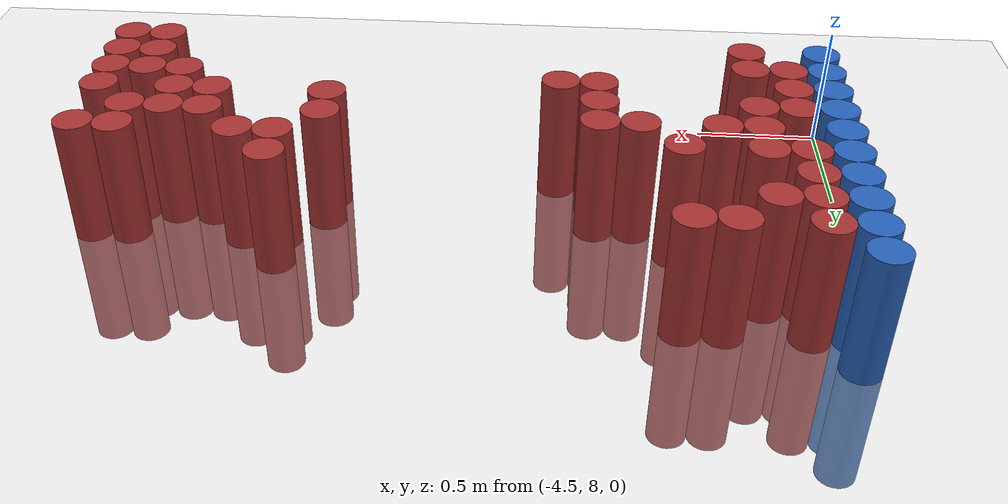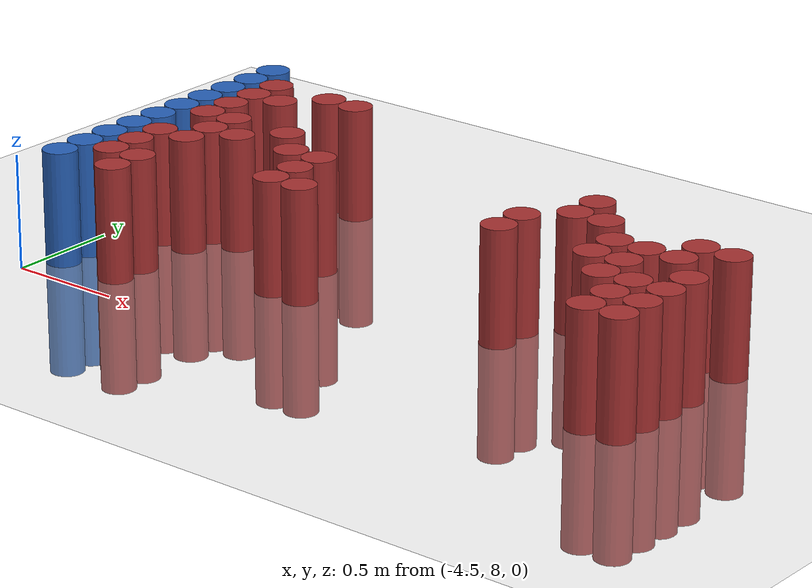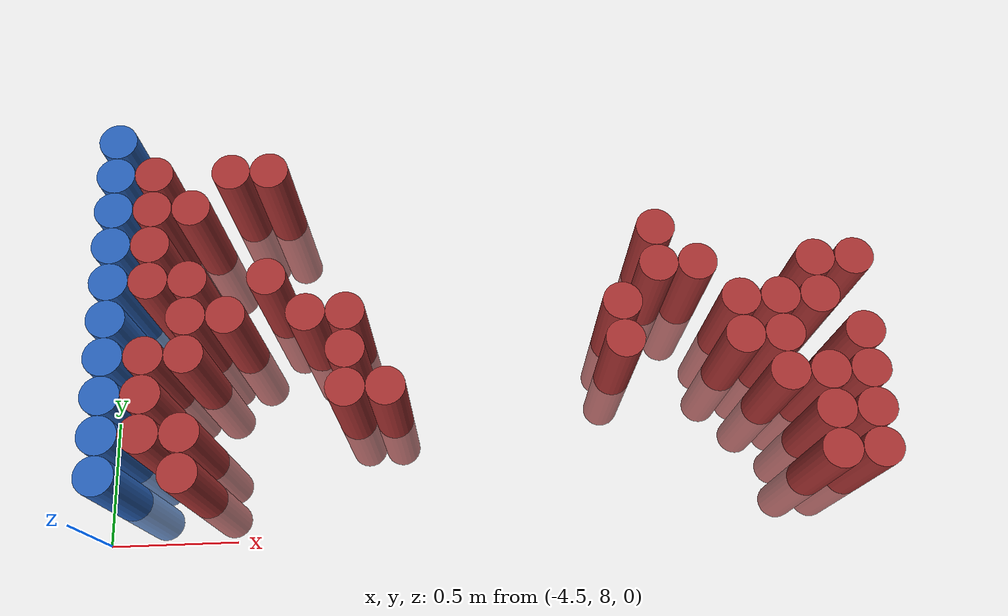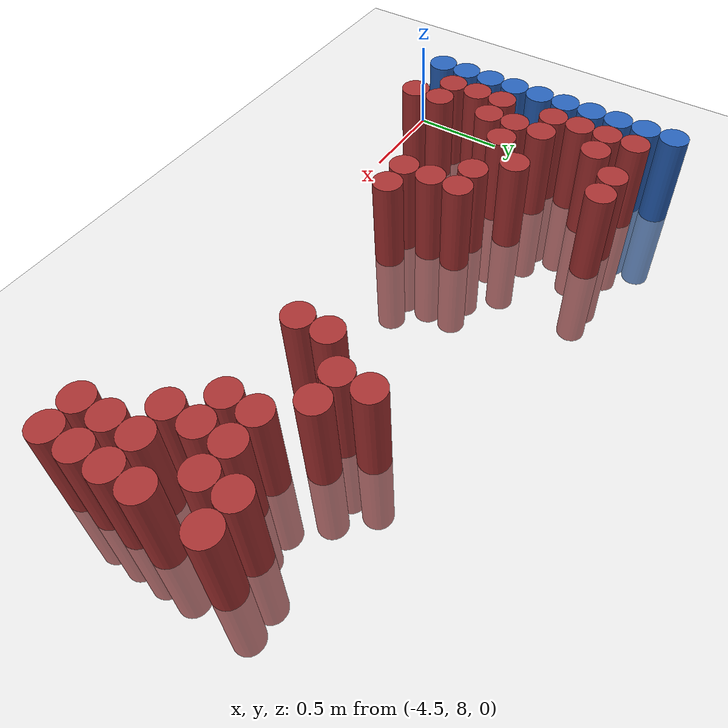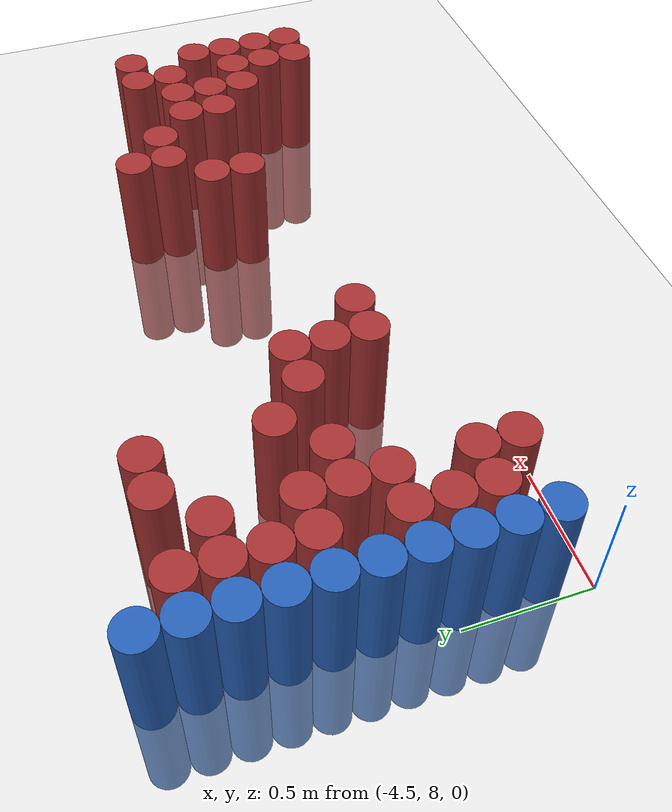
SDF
<sdf version="1.6">
 <world name="default">
  <model name="ground_plane">
   <static>1</static>
   <link name="link">
    <collision name="collision">
     <geometry><plane><normal>0 0 1</normal><size>100 100</size></plane></geometry>
     <surface><friction><ode><mu>100</mu><mu2>50</mu2></ode></friction></surface>
    </collision>
    <visual name="visual">
     <cast_shadows>0</cast_shadows>
     <geometry><plane><normal>0 0 1</normal><size>100 100</size></plane></geometry>
     <material>
      <script><uri>file://media/materials/scripts/gazebo.material</uri><name>Gazebo/Grey</name></script>
     </material>
    </visual>
   </link>
  </model>
  <model name="unit_cylinder_116">
   <static>1</static>
   <pose>-4.425000 8.175000 0.000000 0.000000 0.000000 0.000000</pose>
   <link name="link">
    <inertial>
     <mass>1</mass>
     <inertia><ixx>0.145833</ixx><ixy>0</ixy><ixz>0</ixz><iyy>0.145833</iyy><iyz>0</iyz><izz>0.125</izz></inertia>
    </inertial>
    <collision name="collision">
     <geometry><cylinder><radius>0.075000</radius><length>1</length></cylinder></geometry>
    </collision>
    <visual name="visual">
     <geometry><cylinder><radius>0.075000</radius><length>1</length></cylinder></geometry>
     <material>
      <ambient>0.152000 0.379000 0.720000 1</ambient>
      <diffuse>0.152000 0.379000 0.720000 1</diffuse>
     </material>
     <material>
      <script><name>Gazebo/Grey</name><uri>file://media/materials/scripts/gazebo.material</uri></script>
     </material>
    </visual>
   </link>
  </model>
  <model name="unit_cylinder_117">
   <static>1</static>
   <pose>-4.425000 8.325000 0.000000 0.000000 0.000000 0.000000</pose>
   <link name="link">
    <inertial>
     <mass>1</mass>
     <inertia><ixx>0.145833</ixx><ixy>0</ixy><ixz>0</ixz><iyy>0.145833</iyy><iyz>0</iyz><izz>0.125</izz></inertia>
    </inertial>
    <collision name="collision">
     <geometry><cylinder><radius>0.075000</radius><length>1</length></cylinder></geometry>
    </collision>
    <visual name="visual">
     <geometry><cylinder><radius>0.075000</radius><length>1</length></cylinder></geometry>
     <material>
      <ambient>0.152000 0.379000 0.720000 1</ambient>
      <diffuse>0.152000 0.379000 0.720000 1</diffuse>
     </material>
     <material>
      <script><name>Gazebo/Grey</name><uri>file://media/materials/scripts/gazebo.material</uri></script>
     </material>
    </visual>
   </link>
  </model>
  <model name="unit_cylinder_118">
   <static>1</static>
   <pose>-4.425000 8.475000 0.000000 0.000000 0.000000 0.000000</pose>
   <link name="link">
    <inertial>
     <mass>1</mass>
     <inertia><ixx>0.145833</ixx><ixy>0</ixy><ixz>0</ixz><iyy>0.145833</iyy><iyz>0</iyz><izz>0.125</izz></inertia>
    </inertial>
    <collision name="collision">
     <geometry><cylinder><radius>0.075000</radius><length>1</length></cylinder></geometry>
    </collision>
    <visual name="visual">
     <geometry><cylinder><radius>0.075000</radius><length>1</length></cylinder></geometry>
     <material>
      <ambient>0.152000 0.379000 0.720000 1</ambient>
      <diffuse>0.152000 0.379000 0.720000 1</diffuse>
     </material>
     <material>
      <script><name>Gazebo/Grey</name><uri>file://media/materials/scripts/gazebo.material</uri></script>
     </material>
    </visual>
   </link>
  </model>
  <model name="unit_cylinder_119">
   <static>1</static>
   <pose>-4.425000 8.625000 0.000000 0.000000 0.000000 0.000000</pose>
   <link name="link">
    <inertial>
     <mass>1</mass>
     <inertia><ixx>0.145833</ixx><ixy>0</ixy><ixz>0</ixz><iyy>0.145833</iyy><iyz>0</iyz><izz>0.125</izz></inertia>
    </inertial>
    <collision name="collision">
     <geometry><cylinder><radius>0.075000</radius><length>1</length></cylinder></geometry>
    </collision>
    <visual name="visual">
     <geometry><cylinder><radius>0.075000</radius><length>1</length></cylinder></geometry>
     <material>
      <ambient>0.152000 0.379000 0.720000 1</ambient>
      <diffuse>0.152000 0.379000 0.720000 1</diffuse>
     </material>
     <material>
      <script><name>Gazebo/Grey</name><uri>file://media/materials/scripts/gazebo.material</uri></script>
     </material>
    </visual>
   </link>
  </model>
  <model name="unit_cylinder_120">
   <static>1</static>
   <pose>-4.425000 8.775000 0.000000 0.000000 0.000000 0.000000</pose>
   <link name="link">
    <inertial>
     <mass>1</mass>
     <inertia><ixx>0.145833</ixx><ixy>0</ixy><ixz>0</ixz><iyy>0.145833</iyy><iyz>0</iyz><izz>0.125</izz></inertia>
    </inertial>
    <collision name="collision">
     <geometry><cylinder><radius>0.075000</radius><length>1</length></cylinder></geometry>
    </collision>
    <visual name="visual">
     <geometry><cylinder><radius>0.075000</radius><length>1</length></cylinder></geometry>
     <material>
      <ambient>0.152000 0.379000 0.720000 1</ambient>
      <diffuse>0.152000 0.379000 0.720000 1</diffuse>
     </material>
     <material>
      <script><name>Gazebo/Grey</name><uri>file://media/materials/scripts/gazebo.material</uri></script>
     </material>
    </visual>
   </link>
  </model>
  <model name="unit_cylinder_121">
   <static>1</static>
   <pose>-4.425000 8.925000 0.000000 0.000000 0.000000 0.000000</pose>
   <link name="link">
    <inertial>
     <mass>1</mass>
     <inertia><ixx>0.145833</ixx><ixy>0</ixy><ixz>0</ixz><iyy>0.145833</iyy><iyz>0</iyz><izz>0.125</izz></inertia>
    </inertial>
    <collision name="collision">
     <geometry><cylinder><radius>0.075000</radius><length>1</length></cylinder></geometry>
    </collision>
    <visual name="visual">
     <geometry><cylinder><radius>0.075000</radius><length>1</length></cylinder></geometry>
     <material>
      <ambient>0.152000 0.379000 0.720000 1</ambient>
      <diffuse>0.152000 0.379000 0.720000 1</diffuse>
     </material>
     <material>
      <script><name>Gazebo/Grey</name><uri>file://media/materials/scripts/gazebo.material</uri></script>
     </material>
    </visual>
   </link>
  </model>
  <model name="unit_cylinder_122">
   <static>1</static>
   <pose>-4.425000 9.075000 0.000000 0.000000 0.000000 0.000000</pose>
   <link name="link">
    <inertial>
     <mass>1</mass>
     <inertia><ixx>0.145833</ixx><ixy>0</ixy><ixz>0</ixz><iyy>0.145833</iyy><iyz>0</iyz><izz>0.125</izz></inertia>
    </inertial>
    <collision name="collision">
     <geometry><cylinder><radius>0.075000</radius><length>1</length></cylinder></geometry>
    </collision>
    <visual name="visual">
     <geometry><cylinder><radius>0.075000</radius><length>1</length></cylinder></geometry>
     <material>
      <ambient>0.152000 0.379000 0.720000 1</ambient>
      <diffuse>0.152000 0.379000 0.720000 1</diffuse>
     </material>
     <material>
      <script><name>Gazebo/Grey</name><uri>file://media/materials/scripts/gazebo.material</uri></script>
     </material>
    </visual>
   </link>
  </model>
  <model name="unit_cylinder_123">
   <static>1</static>
   <pose>-4.425000 9.225000 0.000000 0.000000 0.000000 0.000000</pose>
   <link name="link">
    <inertial>
     <mass>1</mass>
     <inertia><ixx>0.145833</ixx><ixy>0</ixy><ixz>0</ixz><iyy>0.145833</iyy><iyz>0</iyz><izz>0.125</izz></inertia>
    </inertial>
    <collision name="collision">
     <geometry><cylinder><radius>0.075000</radius><length>1</length></cylinder></geometry>
    </collision>
    <visual name="visual">
     <geometry><cylinder><radius>0.075000</radius><length>1</length></cylinder></geometry>
     <material>
      <ambient>0.152000 0.379000 0.720000 1</ambient>
      <diffuse>0.152000 0.379000 0.720000 1</diffuse>
     </material>
     <material>
      <script><name>Gazebo/Grey</name><uri>file://media/materials/scripts/gazebo.material</uri></script>
     </material>
    </visual>
   </link>
  </model>
  <model name="unit_cylinder_124">
   <static>1</static>
   <pose>-4.425000 9.375000 0.000000 0.000000 0.000000 0.000000</pose>
   <link name="link">
    <inertial>
     <mass>1</mass>
     <inertia><ixx>0.145833</ixx><ixy>0</ixy><ixz>0</ixz><iyy>0.145833</iyy><iyz>0</iyz><izz>0.125</izz></inertia>
    </inertial>
    <collision name="collision">
     <geometry><cylinder><radius>0.075000</radius><length>1</length></cylinder></geometry>
    </collision>
    <visual name="visual">
     <geometry><cylinder><radius>0.075000</radius><length>1</length></cylinder></geometry>
     <material>
      <ambient>0.152000 0.379000 0.720000 1</ambient>
      <diffuse>0.152000 0.379000 0.720000 1</diffuse>
     </material>
     <material>
      <script><name>Gazebo/Grey</name><uri>file://media/materials/scripts/gazebo.material</uri></script>
     </material>
    </visual>
   </link>
  </model>
  <model name="unit_cylinder_125">
   <static>1</static>
   <pose>-4.425000 9.525000 0.000000 0.000000 0.000000 0.000000</pose>
   <link name="link">
    <inertial>
     <mass>1</mass>
     <inertia><ixx>0.145833</ixx><ixy>0</ixy><ixz>0</ixz><iyy>0.145833</iyy><iyz>0</iyz><izz>0.125</izz></inertia>
    </inertial>
    <collision name="collision">
     <geometry><cylinder><radius>0.075000</radius><length>1</length></cylinder></geometry>
    </collision>
    <visual name="visual">
     <geometry><cylinder><radius>0.075000</radius><length>1</length></cylinder></geometry>
     <material>
      <ambient>0.152000 0.379000 0.720000 1</ambient>
      <diffuse>0.152000 0.379000 0.720000 1</diffuse>
     </material>
     <material>
      <script><name>Gazebo/Grey</name><uri>file://media/materials/scripts/gazebo.material</uri></script>
     </material>
    </visual>
   </link>
  </model>
  <model name="unit_cylinder_136">
   <static>1</static>
   <pose>-4.275000 8.325000 0.000000 0.000000 0.000000 0.000000</pose>
   <link name="link">
    <inertial>
     <mass>1</mass>
     <inertia><ixx>0.145833</ixx><ixy>0</ixy><ixz>0</ixz><iyy>0.145833</iyy><iyz>0</iyz><izz>0.125</izz></inertia>
    </inertial>
    <collision name="collision">
     <geometry><cylinder><radius>0.075000</radius><length>1</length></cylinder></geometry>
    </collision>
    <visual name="visual">
     <geometry><cylinder><radius>0.075000</radius><length>1</length></cylinder></geometry>
     <material>
      <ambient>0.648000 0.192000 0.192000 1</ambient>
      <diffuse>0.648000 0.192000 0.192000 1</diffuse>
     </material>
     <material>
      <script><name>Gazebo/Grey</name><uri>file://media/materials/scripts/gazebo.material</uri></script>
     </material>
    </visual>
   </link>
  </model>
  <model name="unit_cylinder_137">
   <static>1</static>
   <pose>-4.275000 8.475000 0.000000 0.000000 0.000000 0.000000</pose>
   <link name="link">
    <inertial>
     <mass>1</mass>
     <inertia><ixx>0.145833</ixx><ixy>0</ixy><ixz>0</ixz><iyy>0.145833</iyy><iyz>0</iyz><izz>0.125</izz></inertia>
    </inertial>
    <collision name="collision">
     <geometry><cylinder><radius>0.075000</radius><length>1</length></cylinder></geometry>
    </collision>
    <visual name="visual">
     <geometry><cylinder><radius>0.075000</radius><length>1</length></cylinder></geometry>
     <material>
      <ambient>0.648000 0.192000 0.192000 1</ambient>
      <diffuse>0.648000 0.192000 0.192000 1</diffuse>
     </material>
     <material>
      <script><name>Gazebo/Grey</name><uri>file://media/materials/scripts/gazebo.material</uri></script>
     </material>
    </visual>
   </link>
  </model>
  <model name="unit_cylinder_138">
   <static>1</static>
   <pose>-4.275000 8.625000 0.000000 0.000000 0.000000 0.000000</pose>
   <link name="link">
    <inertial>
     <mass>1</mass>
     <inertia><ixx>0.145833</ixx><ixy>0</ixy><ixz>0</ixz><iyy>0.145833</iyy><iyz>0</iyz><izz>0.125</izz></inertia>
    </inertial>
    <collision name="collision">
     <geometry><cylinder><radius>0.075000</radius><length>1</length></cylinder></geometry>
    </collision>
    <visual name="visual">
     <geometry><cylinder><radius>0.075000</radius><length>1</length></cylinder></geometry>
     <material>
      <ambient>0.648000 0.192000 0.192000 1</ambient>
      <diffuse>0.648000 0.192000 0.192000 1</diffuse>
     </material>
     <material>
      <script><name>Gazebo/Grey</name><uri>file://media/materials/scripts/gazebo.material</uri></script>
     </material>
    </visual>
   </link>
  </model>
  <model name="unit_cylinder_139">
   <static>1</static>
   <pose>-4.275000 8.925000 0.000000 0.000000 0.000000 0.000000</pose>
   <link name="link">
    <inertial>
     <mass>1</mass>
     <inertia><ixx>0.145833</ixx><ixy>0</ixy><ixz>0</ixz><iyy>0.145833</iyy><iyz>0</iyz><izz>0.125</izz></inertia>
    </inertial>
    <collision name="collision">
     <geometry><cylinder><radius>0.075000</radius><length>1</length></cylinder></geometry>
    </collision>
    <visual name="visual">
     <geometry><cylinder><radius>0.075000</radius><length>1</length></cylinder></geometry>
     <material>
      <ambient>0.648000 0.192000 0.192000 1</ambient>
      <diffuse>0.648000 0.192000 0.192000 1</diffuse>
     </material>
     <material>
      <script><name>Gazebo/Grey</name><uri>file://media/materials/scripts/gazebo.material</uri></script>
     </material>
    </visual>
   </link>
  </model>
  <model name="unit_cylinder_140">
   <static>1</static>
   <pose>-4.275000 9.075000 0.000000 0.000000 0.000000 0.000000</pose>
   <link name="link">
    <inertial>
     <mass>1</mass>
     <inertia><ixx>0.145833</ixx><ixy>0</ixy><ixz>0</ixz><iyy>0.145833</iyy><iyz>0</iyz><izz>0.125</izz></inertia>
    </inertial>
    <collision name="collision">
     <geometry><cylinder><radius>0.075000</radius><length>1</length></cylinder></geometry>
    </collision>
    <visual name="visual">
     <geometry><cylinder><radius>0.075000</radius><length>1</length></cylinder></geometry>
     <material>
      <ambient>0.648000 0.192000 0.192000 1</ambient>
      <diffuse>0.648000 0.192000 0.192000 1</diffuse>
     </material>
     <material>
      <script><name>Gazebo/Grey</name><uri>file://media/materials/scripts/gazebo.material</uri></script>
     </material>
    </visual>
   </link>
  </model>
  <model name="unit_cylinder_141">
   <static>1</static>
   <pose>-4.275000 9.225000 0.000000 0.000000 0.000000 0.000000</pose>
   <link name="link">
    <inertial>
     <mass>1</mass>
     <inertia><ixx>0.145833</ixx><ixy>0</ixy><ixz>0</ixz><iyy>0.145833</iyy><iyz>0</iyz><izz>0.125</izz></inertia>
    </inertial>
    <collision name="collision">
     <geometry><cylinder><radius>0.075000</radius><length>1</length></cylinder></geometry>
    </collision>
    <visual name="visual">
     <geometry><cylinder><radius>0.075000</radius><length>1</length></cylinder></geometry>
     <material>
      <ambient>0.648000 0.192000 0.192000 1</ambient>
      <diffuse>0.648000 0.192000 0.192000 1</diffuse>
     </material>
     <material>
      <script><name>Gazebo/Grey</name><uri>file://media/materials/scripts/gazebo.material</uri></script>
     </material>
    </visual>
   </link>
  </model>
  <model name="unit_cylinder_142">
   <static>1</static>
   <pose>-4.275000 9.375000 0.000000 0.000000 0.000000 0.000000</pose>
   <link name="link">
    <inertial>
     <mass>1</mass>
     <inertia><ixx>0.145833</ixx><ixy>0</ixy><ixz>0</ixz><iyy>0.145833</iyy><iyz>0</iyz><izz>0.125</izz></inertia>
    </inertial>
    <collision name="collision">
     <geometry><cylinder><radius>0.075000</radius><length>1</length></cylinder></geometry>
    </collision>
    <visual name="visual">
     <geometry><cylinder><radius>0.075000</radius><length>1</length></cylinder></geometry>
     <material>
      <ambient>0.648000 0.192000 0.192000 1</ambient>
      <diffuse>0.648000 0.192000 0.192000 1</diffuse>
     </material>
     <material>
      <script><name>Gazebo/Grey</name><uri>file://media/materials/scripts/gazebo.material</uri></script>
     </material>
    </visual>
   </link>
  </model>
  <model name="unit_cylinder_150">
   <static>1</static>
   <pose>-4.125000 8.175000 0.000000 0.000000 0.000000 0.000000</pose>
   <link name="link">
    <inertial>
     <mass>1</mass>
     <inertia><ixx>0.145833</ixx><ixy>0</ixy><ixz>0</ixz><iyy>0.145833</iyy><iyz>0</iyz><izz>0.125</izz></inertia>
    </inertial>
    <collision name="collision">
     <geometry><cylinder><radius>0.075000</radius><length>1</length></cylinder></geometry>
    </collision>
    <visual name="visual">
     <geometry><cylinder><radius>0.075000</radius><length>1</length></cylinder></geometry>
     <material>
      <ambient>0.648000 0.192000 0.192000 1</ambient>
      <diffuse>0.648000 0.192000 0.192000 1</diffuse>
     </material>
     <material>
      <script><name>Gazebo/Grey</name><uri>file://media/materials/scripts/gazebo.material</uri></script>
     </material>
    </visual>
   </link>
  </model>
  <model name="unit_cylinder_151">
   <static>1</static>
   <pose>-4.125000 8.325000 0.000000 0.000000 0.000000 0.000000</pose>
   <link name="link">
    <inertial>
     <mass>1</mass>
     <inertia><ixx>0.145833</ixx><ixy>0</ixy><ixz>0</ixz><iyy>0.145833</iyy><iyz>0</iyz><izz>0.125</izz></inertia>
    </inertial>
    <collision name="collision">
     <geometry><cylinder><radius>0.075000</radius><length>1</length></cylinder></geometry>
    </collision>
    <visual name="visual">
     <geometry><cylinder><radius>0.075000</radius><length>1</length></cylinder></geometry>
     <material>
      <ambient>0.648000 0.192000 0.192000 1</ambient>
      <diffuse>0.648000 0.192000 0.192000 1</diffuse>
     </material>
     <material>
      <script><name>Gazebo/Grey</name><uri>file://media/materials/scripts/gazebo.material</uri></script>
     </material>
    </visual>
   </link>
  </model>
  <model name="unit_cylinder_152">
   <static>1</static>
   <pose>-4.125000 8.625000 0.000000 0.000000 0.000000 0.000000</pose>
   <link name="link">
    <inertial>
     <mass>1</mass>
     <inertia><ixx>0.145833</ixx><ixy>0</ixy><ixz>0</ixz><iyy>0.145833</iyy><iyz>0</iyz><izz>0.125</izz></inertia>
    </inertial>
    <collision name="collision">
     <geometry><cylinder><radius>0.075000</radius><length>1</length></cylinder></geometry>
    </collision>
    <visual name="visual">
     <geometry><cylinder><radius>0.075000</radius><length>1</length></cylinder></geometry>
     <material>
      <ambient>0.648000 0.192000 0.192000 1</ambient>
      <diffuse>0.648000 0.192000 0.192000 1</diffuse>
     </material>
     <material>
      <script><name>Gazebo/Grey</name><uri>file://media/materials/scripts/gazebo.material</uri></script>
     </material>
    </visual>
   </link>
  </model>
  <model name="unit_cylinder_153">
   <static>1</static>
   <pose>-4.125000 8.775000 0.000000 0.000000 0.000000 0.000000</pose>
   <link name="link">
    <inertial>
     <mass>1</mass>
     <inertia><ixx>0.145833</ixx><ixy>0</ixy><ixz>0</ixz><iyy>0.145833</iyy><iyz>0</iyz><izz>0.125</izz></inertia>
    </inertial>
    <collision name="collision">
     <geometry><cylinder><radius>0.075000</radius><length>1</length></cylinder></geometry>
    </collision>
    <visual name="visual">
     <geometry><cylinder><radius>0.075000</radius><length>1</length></cylinder></geometry>
     <material>
      <ambient>0.648000 0.192000 0.192000 1</ambient>
      <diffuse>0.648000 0.192000 0.192000 1</diffuse>
     </material>
     <material>
      <script><name>Gazebo/Grey</name><uri>file://media/materials/scripts/gazebo.material</uri></script>
     </material>
    </visual>
   </link>
  </model>
  <model name="unit_cylinder_154">
   <static>1</static>
   <pose>-4.125000 8.925000 0.000000 0.000000 0.000000 0.000000</pose>
   <link name="link">
    <inertial>
     <mass>1</mass>
     <inertia><ixx>0.145833</ixx><ixy>0</ixy><ixz>0</ixz><iyy>0.145833</iyy><iyz>0</iyz><izz>0.125</izz></inertia>
    </inertial>
    <collision name="collision">
     <geometry><cylinder><radius>0.075000</radius><length>1</length></cylinder></geometry>
    </collision>
    <visual name="visual">
     <geometry><cylinder><radius>0.075000</radius><length>1</length></cylinder></geometry>
     <material>
      <ambient>0.648000 0.192000 0.192000 1</ambient>
      <diffuse>0.648000 0.192000 0.192000 1</diffuse>
     </material>
     <material>
      <script><name>Gazebo/Grey</name><uri>file://media/materials/scripts/gazebo.material</uri></script>
     </material>
    </visual>
   </link>
  </model>
  <model name="unit_cylinder_155">
   <static>1</static>
   <pose>-4.125000 9.225000 0.000000 0.000000 0.000000 0.000000</pose>
   <link name="link">
    <inertial>
     <mass>1</mass>
     <inertia><ixx>0.145833</ixx><ixy>0</ixy><ixz>0</ixz><iyy>0.145833</iyy><iyz>0</iyz><izz>0.125</izz></inertia>
    </inertial>
    <collision name="collision">
     <geometry><cylinder><radius>0.075000</radius><length>1</length></cylinder></geometry>
    </collision>
    <visual name="visual">
     <geometry><cylinder><radius>0.075000</radius><length>1</length></cylinder></geometry>
     <material>
      <ambient>0.648000 0.192000 0.192000 1</ambient>
      <diffuse>0.648000 0.192000 0.192000 1</diffuse>
     </material>
     <material>
      <script><name>Gazebo/Grey</name><uri>file://media/materials/scripts/gazebo.material</uri></script>
     </material>
    </visual>
   </link>
  </model>
  <model name="unit_cylinder_160">
   <static>1</static>
   <pose>-3.975000 8.775000 0.000000 0.000000 0.000000 0.000000</pose>
   <link name="link">
    <inertial>
     <mass>1</mass>
     <inertia><ixx>0.145833</ixx><ixy>0</ixy><ixz>0</ixz><iyy>0.145833</iyy><iyz>0</iyz><izz>0.125</izz></inertia>
    </inertial>
    <collision name="collision">
     <geometry><cylinder><radius>0.075000</radius><length>1</length></cylinder></geometry>
    </collision>
    <visual name="visual">
     <geometry><cylinder><radius>0.075000</radius><length>1</length></cylinder></geometry>
     <material>
      <ambient>0.648000 0.192000 0.192000 1</ambient>
      <diffuse>0.648000 0.192000 0.192000 1</diffuse>
     </material>
     <material>
      <script><name>Gazebo/Grey</name><uri>file://media/materials/scripts/gazebo.material</uri></script>
     </material>
    </visual>
   </link>
  </model>
  <model name="unit_cylinder_161">
   <static>1</static>
   <pose>-3.975000 9.375000 0.000000 0.000000 0.000000 0.000000</pose>
   <link name="link">
    <inertial>
     <mass>1</mass>
     <inertia><ixx>0.145833</ixx><ixy>0</ixy><ixz>0</ixz><iyy>0.145833</iyy><iyz>0</iyz><izz>0.125</izz></inertia>
    </inertial>
    <collision name="collision">
     <geometry><cylinder><radius>0.075000</radius><length>1</length></cylinder></geometry>
    </collision>
    <visual name="visual">
     <geometry><cylinder><radius>0.075000</radius><length>1</length></cylinder></geometry>
     <material>
      <ambient>0.648000 0.192000 0.192000 1</ambient>
      <diffuse>0.648000 0.192000 0.192000 1</diffuse>
     </material>
     <material>
      <script><name>Gazebo/Grey</name><uri>file://media/materials/scripts/gazebo.material</uri></script>
     </material>
    </visual>
   </link>
  </model>
  <model name="unit_cylinder_166">
   <static>1</static>
   <pose>-3.825000 8.925000 0.000000 0.000000 0.000000 0.000000</pose>
   <link name="link">
    <inertial>
     <mass>1</mass>
     <inertia><ixx>0.145833</ixx><ixy>0</ixy><ixz>0</ixz><iyy>0.145833</iyy><iyz>0</iyz><izz>0.125</izz></inertia>
    </inertial>
    <collision name="collision">
     <geometry><cylinder><radius>0.075000</radius><length>1</length></cylinder></geometry>
    </collision>
    <visual name="visual">
     <geometry><cylinder><radius>0.075000</radius><length>1</length></cylinder></geometry>
     <material>
      <ambient>0.648000 0.192000 0.192000 1</ambient>
      <diffuse>0.648000 0.192000 0.192000 1</diffuse>
     </material>
     <material>
      <script><name>Gazebo/Grey</name><uri>file://media/materials/scripts/gazebo.material</uri></script>
     </material>
    </visual>
   </link>
  </model>
  <model name="unit_cylinder_167">
   <static>1</static>
   <pose>-3.825000 9.375000 0.000000 0.000000 0.000000 0.000000</pose>
   <link name="link">
    <inertial>
     <mass>1</mass>
     <inertia><ixx>0.145833</ixx><ixy>0</ixy><ixz>0</ixz><iyy>0.145833</iyy><iyz>0</iyz><izz>0.125</izz></inertia>
    </inertial>
    <collision name="collision">
     <geometry><cylinder><radius>0.075000</radius><length>1</length></cylinder></geometry>
    </collision>
    <visual name="visual">
     <geometry><cylinder><radius>0.075000</radius><length>1</length></cylinder></geometry>
     <material>
      <ambient>0.648000 0.192000 0.192000 1</ambient>
      <diffuse>0.648000 0.192000 0.192000 1</diffuse>
     </material>
     <material>
      <script><name>Gazebo/Grey</name><uri>file://media/materials/scripts/gazebo.material</uri></script>
     </material>
    </visual>
   </link>
  </model>
  <model name="unit_cylinder_174">
   <static>1</static>
   <pose>-3.675000 8.775000 0.000000 0.000000 0.000000 0.000000</pose>
   <link name="link">
    <inertial>
     <mass>1</mass>
     <inertia><ixx>0.145833</ixx><ixy>0</ixy><ixz>0</ixz><iyy>0.145833</iyy><iyz>0</iyz><izz>0.125</izz></inertia>
    </inertial>
    <collision name="collision">
     <geometry><cylinder><radius>0.075000</radius><length>1</length></cylinder></geometry>
    </collision>
    <visual name="visual">
     <geometry><cylinder><radius>0.075000</radius><length>1</length></cylinder></geometry>
     <material>
      <ambient>0.648000 0.192000 0.192000 1</ambient>
      <diffuse>0.648000 0.192000 0.192000 1</diffuse>
     </material>
     <material>
      <script><name>Gazebo/Grey</name><uri>file://media/materials/scripts/gazebo.material</uri></script>
     </material>
    </visual>
   </link>
  </model>
  <model name="unit_cylinder_179">
   <static>1</static>
   <pose>-3.525000 8.475000 0.000000 0.000000 0.000000 0.000000</pose>
   <link name="link">
    <inertial>
     <mass>1</mass>
     <inertia><ixx>0.145833</ixx><ixy>0</ixy><ixz>0</ixz><iyy>0.145833</iyy><iyz>0</iyz><izz>0.125</izz></inertia>
    </inertial>
    <collision name="collision">
     <geometry><cylinder><radius>0.075000</radius><length>1</length></cylinder></geometry>
    </collision>
    <visual name="visual">
     <geometry><cylinder><radius>0.075000</radius><length>1</length></cylinder></geometry>
     <material>
      <ambient>0.648000 0.192000 0.192000 1</ambient>
      <diffuse>0.648000 0.192000 0.192000 1</diffuse>
     </material>
     <material>
      <script><name>Gazebo/Grey</name><uri>file://media/materials/scripts/gazebo.material</uri></script>
     </material>
    </visual>
   </link>
  </model>
  <model name="unit_cylinder_180">
   <static>1</static>
   <pose>-3.525000 8.625000 0.000000 0.000000 0.000000 0.000000</pose>
   <link name="link">
    <inertial>
     <mass>1</mass>
     <inertia><ixx>0.145833</ixx><ixy>0</ixy><ixz>0</ixz><iyy>0.145833</iyy><iyz>0</iyz><izz>0.125</izz></inertia>
    </inertial>
    <collision name="collision">
     <geometry><cylinder><radius>0.075000</radius><length>1</length></cylinder></geometry>
    </collision>
    <visual name="visual">
     <geometry><cylinder><radius>0.075000</radius><length>1</length></cylinder></geometry>
     <material>
      <ambient>0.648000 0.192000 0.192000 1</ambient>
      <diffuse>0.648000 0.192000 0.192000 1</diffuse>
     </material>
     <material>
      <script><name>Gazebo/Grey</name><uri>file://media/materials/scripts/gazebo.material</uri></script>
     </material>
    </visual>
   </link>
  </model>
  <model name="unit_cylinder_181">
   <static>1</static>
   <pose>-3.525000 8.775000 0.000000 0.000000 0.000000 0.000000</pose>
   <link name="link">
    <inertial>
     <mass>1</mass>
     <inertia><ixx>0.145833</ixx><ixy>0</ixy><ixz>0</ixz><iyy>0.145833</iyy><iyz>0</iyz><izz>0.125</izz></inertia>
    </inertial>
    <collision name="collision">
     <geometry><cylinder><radius>0.075000</radius><length>1</length></cylinder></geometry>
    </collision>
    <visual name="visual">
     <geometry><cylinder><radius>0.075000</radius><length>1</length></cylinder></geometry>
     <material>
      <ambient>0.648000 0.192000 0.192000 1</ambient>
      <diffuse>0.648000 0.192000 0.192000 1</diffuse>
     </material>
     <material>
      <script><name>Gazebo/Grey</name><uri>file://media/materials/scripts/gazebo.material</uri></script>
     </material>
    </visual>
   </link>
  </model>
  <model name="unit_cylinder_186">
   <static>1</static>
   <pose>-3.375000 8.475000 0.000000 0.000000 0.000000 0.000000</pose>
   <link name="link">
    <inertial>
     <mass>1</mass>
     <inertia><ixx>0.145833</ixx><ixy>0</ixy><ixz>0</ixz><iyy>0.145833</iyy><iyz>0</iyz><izz>0.125</izz></inertia>
    </inertial>
    <collision name="collision">
     <geometry><cylinder><radius>0.075000</radius><length>1</length></cylinder></geometry>
    </collision>
    <visual name="visual">
     <geometry><cylinder><radius>0.075000</radius><length>1</length></cylinder></geometry>
     <material>
      <ambient>0.648000 0.192000 0.192000 1</ambient>
      <diffuse>0.648000 0.192000 0.192000 1</diffuse>
     </material>
     <material>
      <script><name>Gazebo/Grey</name><uri>file://media/materials/scripts/gazebo.material</uri></script>
     </material>
    </visual>
   </link>
  </model>
  <model name="unit_cylinder_204">
   <static>1</static>
   <pose>-2.475000 8.625000 0.000000 0.000000 0.000000 0.000000</pose>
   <link name="link">
    <inertial>
     <mass>1</mass>
     <inertia><ixx>0.145833</ixx><ixy>0</ixy><ixz>0</ixz><iyy>0.145833</iyy><iyz>0</iyz><izz>0.125</izz></inertia>
    </inertial>
    <collision name="collision">
     <geometry><cylinder><radius>0.075000</radius><length>1</length></cylinder></geometry>
    </collision>
    <visual name="visual">
     <geometry><cylinder><radius>0.075000</radius><length>1</length></cylinder></geometry>
     <material>
      <ambient>0.648000 0.192000 0.192000 1</ambient>
      <diffuse>0.648000 0.192000 0.192000 1</diffuse>
     </material>
     <material>
      <script><name>Gazebo/Grey</name><uri>file://media/materials/scripts/gazebo.material</uri></script>
     </material>
    </visual>
   </link>
  </model>
  <model name="unit_cylinder_205">
   <static>1</static>
   <pose>-2.475000 8.775000 0.000000 0.000000 0.000000 0.000000</pose>
   <link name="link">
    <inertial>
     <mass>1</mass>
     <inertia><ixx>0.145833</ixx><ixy>0</ixy><ixz>0</ixz><iyy>0.145833</iyy><iyz>0</iyz><izz>0.125</izz></inertia>
    </inertial>
    <collision name="collision">
     <geometry><cylinder><radius>0.075000</radius><length>1</length></cylinder></geometry>
    </collision>
    <visual name="visual">
     <geometry><cylinder><radius>0.075000</radius><length>1</length></cylinder></geometry>
     <material>
      <ambient>0.648000 0.192000 0.192000 1</ambient>
      <diffuse>0.648000 0.192000 0.192000 1</diffuse>
     </material>
     <material>
      <script><name>Gazebo/Grey</name><uri>file://media/materials/scripts/gazebo.material</uri></script>
     </material>
    </visual>
   </link>
  </model>
  <model name="unit_cylinder_207">
   <static>1</static>
   <pose>-2.325000 8.925000 0.000000 0.000000 0.000000 0.000000</pose>
   <link name="link">
    <inertial>
     <mass>1</mass>
     <inertia><ixx>0.145833</ixx><ixy>0</ixy><ixz>0</ixz><iyy>0.145833</iyy><iyz>0</iyz><izz>0.125</izz></inertia>
    </inertial>
    <collision name="collision">
     <geometry><cylinder><radius>0.075000</radius><length>1</length></cylinder></geometry>
    </collision>
    <visual name="visual">
     <geometry><cylinder><radius>0.075000</radius><length>1</length></cylinder></geometry>
     <material>
      <ambient>0.648000 0.192000 0.192000 1</ambient>
      <diffuse>0.648000 0.192000 0.192000 1</diffuse>
     </material>
     <material>
      <script><name>Gazebo/Grey</name><uri>file://media/materials/scripts/gazebo.material</uri></script>
     </material>
    </visual>
   </link>
  </model>
  <model name="unit_cylinder_208">
   <static>1</static>
   <pose>-2.325000 9.075000 0.000000 0.000000 0.000000 0.000000</pose>
   <link name="link">
    <inertial>
     <mass>1</mass>
     <inertia><ixx>0.145833</ixx><ixy>0</ixy><ixz>0</ixz><iyy>0.145833</iyy><iyz>0</iyz><izz>0.125</izz></inertia>
    </inertial>
    <collision name="collision">
     <geometry><cylinder><radius>0.075000</radius><length>1</length></cylinder></geometry>
    </collision>
    <visual name="visual">
     <geometry><cylinder><radius>0.075000</radius><length>1</length></cylinder></geometry>
     <material>
      <ambient>0.648000 0.192000 0.192000 1</ambient>
      <diffuse>0.648000 0.192000 0.192000 1</diffuse>
     </material>
     <material>
      <script><name>Gazebo/Grey</name><uri>file://media/materials/scripts/gazebo.material</uri></script>
     </material>
    </visual>
   </link>
  </model>
  <model name="unit_cylinder_209">
   <static>1</static>
   <pose>-2.175000 8.925000 0.000000 0.000000 0.000000 0.000000</pose>
   <link name="link">
    <inertial>
     <mass>1</mass>
     <inertia><ixx>0.145833</ixx><ixy>0</ixy><ixz>0</ixz><iyy>0.145833</iyy><iyz>0</iyz><izz>0.125</izz></inertia>
    </inertial>
    <collision name="collision">
     <geometry><cylinder><radius>0.075000</radius><length>1</length></cylinder></geometry>
    </collision>
    <visual name="visual">
     <geometry><cylinder><radius>0.075000</radius><length>1</length></cylinder></geometry>
     <material>
      <ambient>0.648000 0.192000 0.192000 1</ambient>
      <diffuse>0.648000 0.192000 0.192000 1</diffuse>
     </material>
     <material>
      <script><name>Gazebo/Grey</name><uri>file://media/materials/scripts/gazebo.material</uri></script>
     </material>
    </visual>
   </link>
  </model>
  <model name="unit_cylinder_210">
   <static>1</static>
   <pose>-2.025000 8.625000 0.000000 0.000000 0.000000 0.000000</pose>
   <link name="link">
    <inertial>
     <mass>1</mass>
     <inertia><ixx>0.145833</ixx><ixy>0</ixy><ixz>0</ixz><iyy>0.145833</iyy><iyz>0</iyz><izz>0.125</izz></inertia>
    </inertial>
    <collision name="collision">
     <geometry><cylinder><radius>0.075000</radius><length>1</length></cylinder></geometry>
    </collision>
    <visual name="visual">
     <geometry><cylinder><radius>0.075000</radius><length>1</length></cylinder></geometry>
     <material>
      <ambient>0.648000 0.192000 0.192000 1</ambient>
      <diffuse>0.648000 0.192000 0.192000 1</diffuse>
     </material>
     <material>
      <script><name>Gazebo/Grey</name><uri>file://media/materials/scripts/gazebo.material</uri></script>
     </material>
    </visual>
   </link>
  </model>
  <model name="unit_cylinder_211">
   <static>1</static>
   <pose>-2.025000 8.775000 0.000000 0.000000 0.000000 0.000000</pose>
   <link name="link">
    <inertial>
     <mass>1</mass>
     <inertia><ixx>0.145833</ixx><ixy>0</ixy><ixz>0</ixz><iyy>0.145833</iyy><iyz>0</iyz><izz>0.125</izz></inertia>
    </inertial>
    <collision name="collision">
     <geometry><cylinder><radius>0.075000</radius><length>1</length></cylinder></geometry>
    </collision>
    <visual name="visual">
     <geometry><cylinder><radius>0.075000</radius><length>1</length></cylinder></geometry>
     <material>
      <ambient>0.648000 0.192000 0.192000 1</ambient>
      <diffuse>0.648000 0.192000 0.192000 1</diffuse>
     </material>
     <material>
      <script><name>Gazebo/Grey</name><uri>file://media/materials/scripts/gazebo.material</uri></script>
     </material>
    </visual>
   </link>
  </model>
  <model name="unit_cylinder_212">
   <static>1</static>
   <pose>-1.875000 8.475000 0.000000 0.000000 0.000000 0.000000</pose>
   <link name="link">
    <inertial>
     <mass>1</mass>
     <inertia><ixx>0.145833</ixx><ixy>0</ixy><ixz>0</ixz><iyy>0.145833</iyy><iyz>0</iyz><izz>0.125</izz></inertia>
    </inertial>
    <collision name="collision">
     <geometry><cylinder><radius>0.075000</radius><length>1</length></cylinder></geometry>
    </collision>
    <visual name="visual">
     <geometry><cylinder><radius>0.075000</radius><length>1</length></cylinder></geometry>
     <material>
      <ambient>0.648000 0.192000 0.192000 1</ambient>
      <diffuse>0.648000 0.192000 0.192000 1</diffuse>
     </material>
     <material>
      <script><name>Gazebo/Grey</name><uri>file://media/materials/scripts/gazebo.material</uri></script>
     </material>
    </visual>
   </link>
  </model>
  <model name="unit_cylinder_213">
   <static>1</static>
   <pose>-1.875000 8.625000 0.000000 0.000000 0.000000 0.000000</pose>
   <link name="link">
    <inertial>
     <mass>1</mass>
     <inertia><ixx>0.145833</ixx><ixy>0</ixy><ixz>0</ixz><iyy>0.145833</iyy><iyz>0</iyz><izz>0.125</izz></inertia>
    </inertial>
    <collision name="collision">
     <geometry><cylinder><radius>0.075000</radius><length>1</length></cylinder></geometry>
    </collision>
    <visual name="visual">
     <geometry><cylinder><radius>0.075000</radius><length>1</length></cylinder></geometry>
     <material>
      <ambient>0.648000 0.192000 0.192000 1</ambient>
      <diffuse>0.648000 0.192000 0.192000 1</diffuse>
     </material>
     <material>
      <script><name>Gazebo/Grey</name><uri>file://media/materials/scripts/gazebo.material</uri></script>
     </material>
    </visual>
   </link>
  </model>
  <model name="unit_cylinder_214">
   <static>1</static>
   <pose>-1.875000 8.775000 0.000000 0.000000 0.000000 0.000000</pose>
   <link name="link">
    <inertial>
     <mass>1</mass>
     <inertia><ixx>0.145833</ixx><ixy>0</ixy><ixz>0</ixz><iyy>0.145833</iyy><iyz>0</iyz><izz>0.125</izz></inertia>
    </inertial>
    <collision name="collision">
     <geometry><cylinder><radius>0.075000</radius><length>1</length></cylinder></geometry>
    </collision>
    <visual name="visual">
     <geometry><cylinder><radius>0.075000</radius><length>1</length></cylinder></geometry>
     <material>
      <ambient>0.648000 0.192000 0.192000 1</ambient>
      <diffuse>0.648000 0.192000 0.192000 1</diffuse>
     </material>
     <material>
      <script><name>Gazebo/Grey</name><uri>file://media/materials/scripts/gazebo.material</uri></script>
     </material>
    </visual>
   </link>
  </model>
  <model name="unit_cylinder_215">
   <static>1</static>
   <pose>-1.725000 8.175000 0.000000 0.000000 0.000000 0.000000</pose>
   <link name="link">
    <inertial>
     <mass>1</mass>
     <inertia><ixx>0.145833</ixx><ixy>0</ixy><ixz>0</ixz><iyy>0.145833</iyy><iyz>0</iyz><izz>0.125</izz></inertia>
    </inertial>
    <collision name="collision">
     <geometry><cylinder><radius>0.075000</radius><length>1</length></cylinder></geometry>
    </collision>
    <visual name="visual">
     <geometry><cylinder><radius>0.075000</radius><length>1</length></cylinder></geometry>
     <material>
      <ambient>0.648000 0.192000 0.192000 1</ambient>
      <diffuse>0.648000 0.192000 0.192000 1</diffuse>
     </material>
     <material>
      <script><name>Gazebo/Grey</name><uri>file://media/materials/scripts/gazebo.material</uri></script>
     </material>
    </visual>
   </link>
  </model>
  <model name="unit_cylinder_216">
   <static>1</static>
   <pose>-1.725000 8.325000 0.000000 0.000000 0.000000 0.000000</pose>
   <link name="link">
    <inertial>
     <mass>1</mass>
     <inertia><ixx>0.145833</ixx><ixy>0</ixy><ixz>0</ixz><iyy>0.145833</iyy><iyz>0</iyz><izz>0.125</izz></inertia>
    </inertial>
    <collision name="collision">
     <geometry><cylinder><radius>0.075000</radius><length>1</length></cylinder></geometry>
    </collision>
    <visual name="visual">
     <geometry><cylinder><radius>0.075000</radius><length>1</length></cylinder></geometry>
     <material>
      <ambient>0.648000 0.192000 0.192000 1</ambient>
      <diffuse>0.648000 0.192000 0.192000 1</diffuse>
     </material>
     <material>
      <script><name>Gazebo/Grey</name><uri>file://media/materials/scripts/gazebo.material</uri></script>
     </material>
    </visual>
   </link>
  </model>
  <model name="unit_cylinder_217">
   <static>1</static>
   <pose>-1.725000 8.475000 0.000000 0.000000 0.000000 0.000000</pose>
   <link name="link">
    <inertial>
     <mass>1</mass>
     <inertia><ixx>0.145833</ixx><ixy>0</ixy><ixz>0</ixz><iyy>0.145833</iyy><iyz>0</iyz><izz>0.125</izz></inertia>
    </inertial>
    <collision name="collision">
     <geometry><cylinder><radius>0.075000</radius><length>1</length></cylinder></geometry>
    </collision>
    <visual name="visual">
     <geometry><cylinder><radius>0.075000</radius><length>1</length></cylinder></geometry>
     <material>
      <ambient>0.648000 0.192000 0.192000 1</ambient>
      <diffuse>0.648000 0.192000 0.192000 1</diffuse>
     </material>
     <material>
      <script><name>Gazebo/Grey</name><uri>file://media/materials/scripts/gazebo.material</uri></script>
     </material>
    </visual>
   </link>
  </model>
  <model name="unit_cylinder_218">
   <static>1</static>
   <pose>-1.725000 8.775000 0.000000 0.000000 0.000000 0.000000</pose>
   <link name="link">
    <inertial>
     <mass>1</mass>
     <inertia><ixx>0.145833</ixx><ixy>0</ixy><ixz>0</ixz><iyy>0.145833</iyy><iyz>0</iyz><izz>0.125</izz></inertia>
    </inertial>
    <collision name="collision">
     <geometry><cylinder><radius>0.075000</radius><length>1</length></cylinder></geometry>
    </collision>
    <visual name="visual">
     <geometry><cylinder><radius>0.075000</radius><length>1</length></cylinder></geometry>
     <material>
      <ambient>0.648000 0.192000 0.192000 1</ambient>
      <diffuse>0.648000 0.192000 0.192000 1</diffuse>
     </material>
     <material>
      <script><name>Gazebo/Grey</name><uri>file://media/materials/scripts/gazebo.material</uri></script>
     </material>
    </visual>
   </link>
  </model>
  <model name="unit_cylinder_219">
   <static>1</static>
   <pose>-1.725000 8.925000 0.000000 0.000000 0.000000 0.000000</pose>
   <link name="link">
    <inertial>
     <mass>1</mass>
     <inertia><ixx>0.145833</ixx><ixy>0</ixy><ixz>0</ixz><iyy>0.145833</iyy><iyz>0</iyz><izz>0.125</izz></inertia>
    </inertial>
    <collision name="collision">
     <geometry><cylinder><radius>0.075000</radius><length>1</length></cylinder></geometry>
    </collision>
    <visual name="visual">
     <geometry><cylinder><radius>0.075000</radius><length>1</length></cylinder></geometry>
     <material>
      <ambient>0.648000 0.192000 0.192000 1</ambient>
      <diffuse>0.648000 0.192000 0.192000 1</diffuse>
     </material>
     <material>
      <script><name>Gazebo/Grey</name><uri>file://media/materials/scripts/gazebo.material</uri></script>
     </material>
    </visual>
   </link>
  </model>
  <model name="unit_cylinder_220">
   <static>1</static>
   <pose>-1.575000 8.175000 0.000000 0.000000 0.000000 0.000000</pose>
   <link name="link">
    <inertial>
     <mass>1</mass>
     <inertia><ixx>0.145833</ixx><ixy>0</ixy><ixz>0</ixz><iyy>0.145833</iyy><iyz>0</iyz><izz>0.125</izz></inertia>
    </inertial>
    <collision name="collision">
     <geometry><cylinder><radius>0.075000</radius><length>1</length></cylinder></geometry>
    </collision>
    <visual name="visual">
     <geometry><cylinder><radius>0.075000</radius><length>1</length></cylinder></geometry>
     <material>
      <ambient>0.648000 0.192000 0.192000 1</ambient>
      <diffuse>0.648000 0.192000 0.192000 1</diffuse>
     </material>
     <material>
      <script><name>Gazebo/Grey</name><uri>file://media/materials/scripts/gazebo.material</uri></script>
     </material>
    </visual>
   </link>
  </model>
  <model name="unit_cylinder_221">
   <static>1</static>
   <pose>-1.575000 8.325000 0.000000 0.000000 0.000000 0.000000</pose>
   <link name="link">
    <inertial>
     <mass>1</mass>
     <inertia><ixx>0.145833</ixx><ixy>0</ixy><ixz>0</ixz><iyy>0.145833</iyy><iyz>0</iyz><izz>0.125</izz></inertia>
    </inertial>
    <collision name="collision">
     <geometry><cylinder><radius>0.075000</radius><length>1</length></cylinder></geometry>
    </collision>
    <visual name="visual">
     <geometry><cylinder><radius>0.075000</radius><length>1</length></cylinder></geometry>
     <material>
      <ambient>0.648000 0.192000 0.192000 1</ambient>
      <diffuse>0.648000 0.192000 0.192000 1</diffuse>
     </material>
     <material>
      <script><name>Gazebo/Grey</name><uri>file://media/materials/scripts/gazebo.material</uri></script>
     </material>
    </visual>
   </link>
  </model>
  <model name="unit_cylinder_222">
   <static>1</static>
   <pose>-1.575000 8.475000 0.000000 0.000000 0.000000 0.000000</pose>
   <link name="link">
    <inertial>
     <mass>1</mass>
     <inertia><ixx>0.145833</ixx><ixy>0</ixy><ixz>0</ixz><iyy>0.145833</iyy><iyz>0</iyz><izz>0.125</izz></inertia>
    </inertial>
    <collision name="collision">
     <geometry><cylinder><radius>0.075000</radius><length>1</length></cylinder></geometry>
    </collision>
    <visual name="visual">
     <geometry><cylinder><radius>0.075000</radius><length>1</length></cylinder></geometry>
     <material>
      <ambient>0.648000 0.192000 0.192000 1</ambient>
      <diffuse>0.648000 0.192000 0.192000 1</diffuse>
     </material>
     <material>
      <script><name>Gazebo/Grey</name><uri>file://media/materials/scripts/gazebo.material</uri></script>
     </material>
    </visual>
   </link>
  </model>
  <model name="unit_cylinder_223">
   <static>1</static>
   <pose>-1.575000 8.625000 0.000000 0.000000 0.000000 0.000000</pose>
   <link name="link">
    <inertial>
     <mass>1</mass>
     <inertia><ixx>0.145833</ixx><ixy>0</ixy><ixz>0</ixz><iyy>0.145833</iyy><iyz>0</iyz><izz>0.125</izz></inertia>
    </inertial>
    <collision name="collision">
     <geometry><cylinder><radius>0.075000</radius><length>1</length></cylinder></geometry>
    </collision>
    <visual name="visual">
     <geometry><cylinder><radius>0.075000</radius><length>1</length></cylinder></geometry>
     <material>
      <ambient>0.648000 0.192000 0.192000 1</ambient>
      <diffuse>0.648000 0.192000 0.192000 1</diffuse>
     </material>
     <material>
      <script><name>Gazebo/Grey</name><uri>file://media/materials/scripts/gazebo.material</uri></script>
     </material>
    </visual>
   </link>
  </model>
  <model name="unit_cylinder_224">
   <static>1</static>
   <pose>-1.575000 8.925000 0.000000 0.000000 0.000000 0.000000</pose>
   <link name="link">
    <inertial>
     <mass>1</mass>
     <inertia><ixx>0.145833</ixx><ixy>0</ixy><ixz>0</ixz><iyy>0.145833</iyy><iyz>0</iyz><izz>0.125</izz></inertia>
    </inertial>
    <collision name="collision">
     <geometry><cylinder><radius>0.075000</radius><length>1</length></cylinder></geometry>
    </collision>
    <visual name="visual">
     <geometry><cylinder><radius>0.075000</radius><length>1</length></cylinder></geometry>
     <material>
      <ambient>0.648000 0.192000 0.192000 1</ambient>
      <diffuse>0.648000 0.192000 0.192000 1</diffuse>
     </material>
     <material>
      <script><name>Gazebo/Grey</name><uri>file://media/materials/scripts/gazebo.material</uri></script>
     </material>
    </visual>
   </link>
  </model>
 </world>
</sdf>
